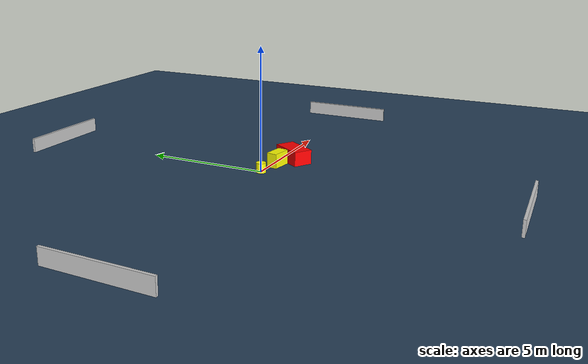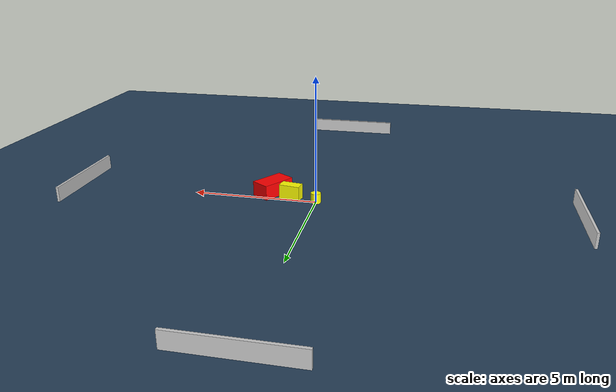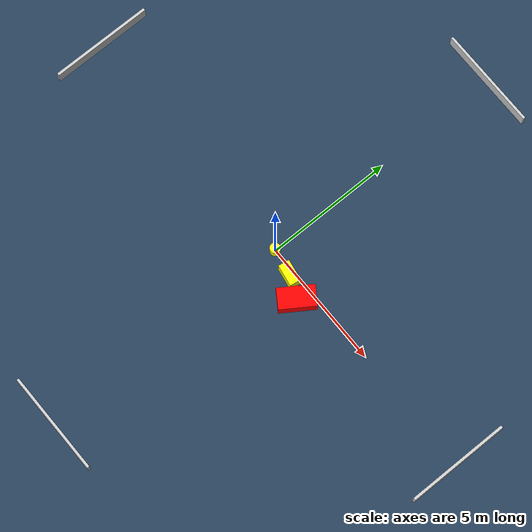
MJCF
<?xml version="1.0" ?>
<mujoco model="generated_environment">
  <option timestep="0.01" integrator="RK4" cone="elliptic"/>
  <default>
    <geom density="1"/>
  </default>
  <asset>
    <texture builtin="gradient" height="3072" name="skybox" rgb1="0.3 0.5 0.7" rgb2="0 0 0" type="skybox" width="512"/>
    <texture builtin="checker" height="300" name="groundplane" rgb1="0.2 0.3 0.4" rgb2="0.1 0.2 0.3" type="2d" width="300"/>
    <material name="groundplane" reflectance="0.2" texrepeat="5 5" texture="groundplane"/>
  </asset>
  <worldbody>
    <light dir="0 0 -1" directional="true" pos="0 0 1.5"/>
    <geom condim="3" friction="0.5 0.005 0.001" material="groundplane" name="floor" pos="0 0 0" size="0 0 0.05" type="plane"/>
    <body name="walls">
      <geom name="wall_1" condim="4" pos="-10.0 0.0 0.3" rgba="0.800000011920929 0.800000011920929 0.800000011920929 1.0" size="0.05 2.0 0.3" type="box"/>
      <geom name="wall_2" condim="4" pos="10.0 0.0 0.3" rgba="0.800000011920929 0.800000011920929 0.800000011920929 1.0" size="0.05 2.0 0.3" type="box"/>
      <geom name="wall_3" condim="4" pos="0.0 -10.0 0.3" rgba="0.800000011920929 0.800000011920929 0.800000011920929 1.0" size="2.0 0.05 0.3" type="box"/>
      <geom name="wall_4" condim="4" pos="0.0 10.0 0.3" rgba="0.800000011920929 0.800000011920929 0.800000011920929 1.0" size="2.0 0.05 0.3" type="box"/>
    </body>
    <body name="robot">
      <joint name="joint_x" type="slide" pos="0 0 0" axis="1 0 0"/>
      <joint name="joint_y" type="slide" pos="0 0 0" axis="0 1 0"/>
      <geom name="robot" type="cylinder" pos="0.0 0.0 0.2" size="0.2 0.2 0.0" mass="5.0" friction="1.0 0.005 0.0001" condim="4" rgba="1.0 1.0 0.0 1.0"/>
    </body>
    <body name="obstacle_1_movable">
      <geom name="obstacle_1_movable" condim="4" pos="1.0652362188925713 -0.21299375452395902 0.3" euler="0 0 170.60163598716446" friction="0.0 0.005 0.001" rgba="1.0 1.0 0.0 1.0" size="0.4184711653829348 0.21755757807974385 0.3" type="box" mass="0.1"/>
      <joint type="free"/>
    </body>
    <body name="obstacle_2_static">
      <geom name="obstacle_2_static" condim="4" pos="1.9025149910458146 -0.5743955161200777 0.3" euler="0 0 236.52627506718352" friction="0.0 0.005 0.001" rgba="1.0 0.0 0.0 1.0" size="0.7035779071985957 0.3995063222376496 0.3" type="box"/>
    </body>
  </worldbody>
  <actuator>
    <motor name="actuator_x" joint="joint_x" gear="1" ctrlrange="-1 1"/>
    <motor name="actuator_y" joint="joint_y" gear="1" ctrlrange="-1 1"/>
  </actuator>
</mujoco>
